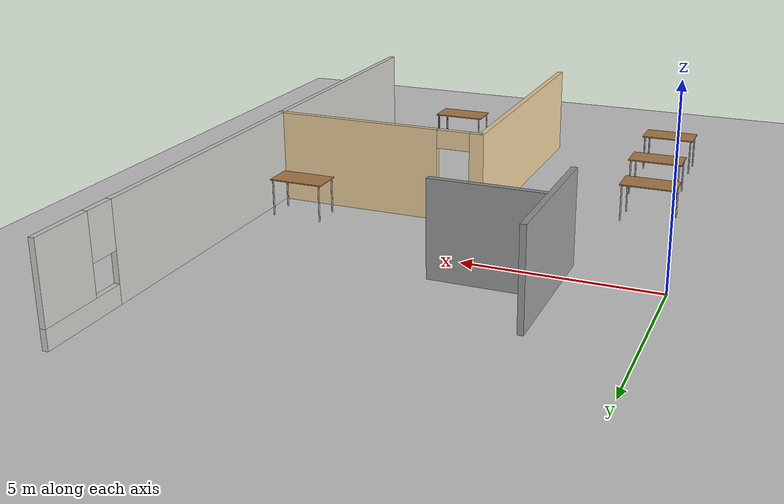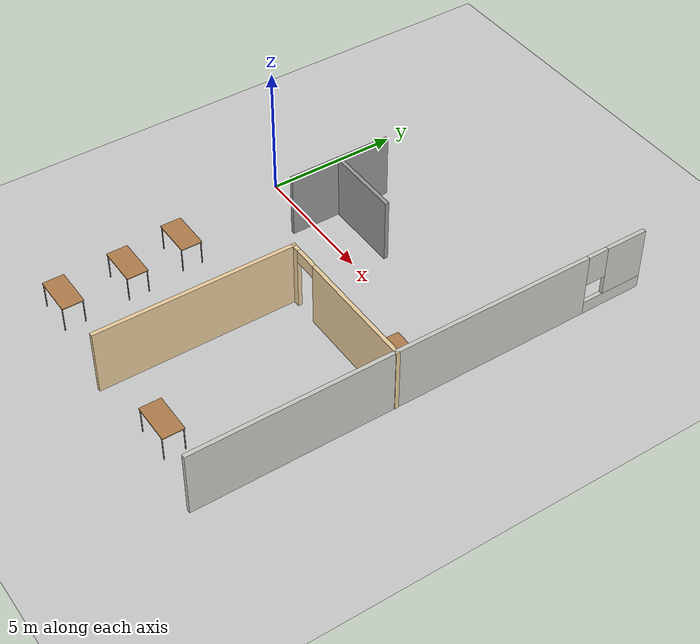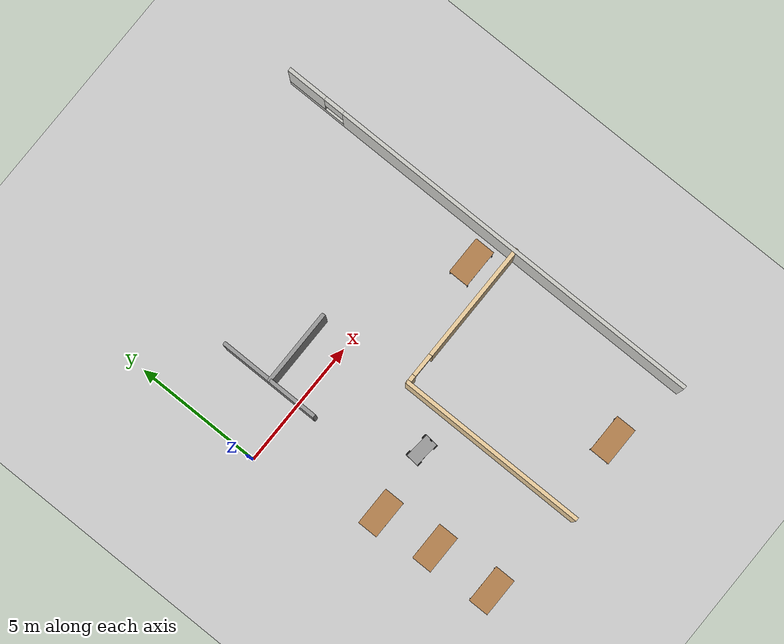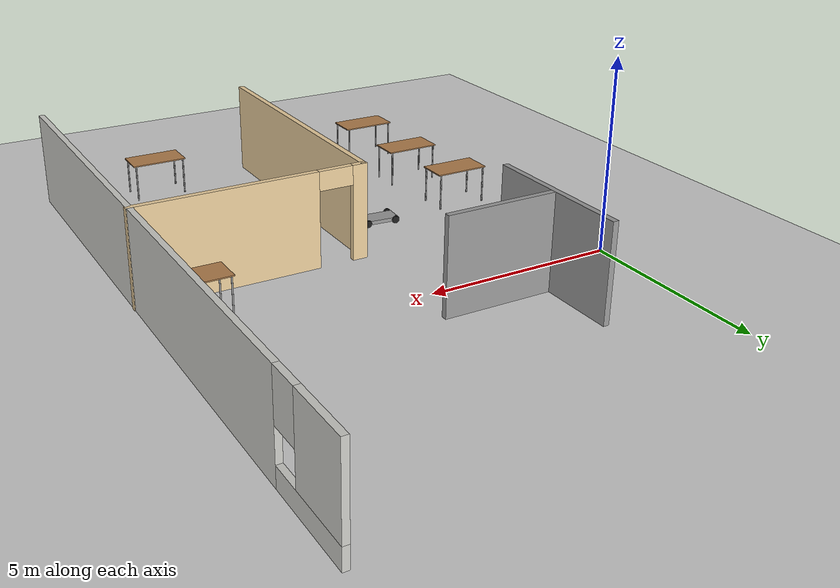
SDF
<sdf version="1.6">
 <world name="default">
  <model name="ground_plane">
   <static>1</static>
   <link name="link">
    <collision name="collision">
     <geometry><plane><normal>0 0 1</normal><size>100 100</size></plane></geometry>
     <surface>
      <contact><collide_bitmask>65535</collide_bitmask></contact>
      <friction><ode><mu>100</mu><mu2>50</mu2></ode></friction>
     </surface>
    </collision>
    <visual name="visual">
     <cast_shadows>0</cast_shadows>
     <geometry><plane><normal>0 0 1</normal><size>100 100</size></plane></geometry>
     <material>
      <script><uri>file://media/materials/scripts/gazebo.material</uri><name>Gazebo/Grey</name></script>
     </material>
    </visual>
   </link>
  </model>
  <model name="table">
   <static>1</static>
   <link name="link">
    <collision name="surface">
     <pose>0 0 1 0 -0 0</pose>
     <geometry><box><size>1.5 0.8 0.03</size></box></geometry>
     <surface><friction><ode><mu>0.6</mu><mu2>0.6</mu2></ode></friction></surface>
    </collision>
    <visual name="visual1">
     <pose>0 0 1 0 -0 0</pose>
     <geometry><box><size>1.5 0.8 0.03</size></box></geometry>
     <material>
      <script><uri>file://media/materials/scripts/gazebo.material</uri><name>Gazebo/Wood</name></script>
     </material>
    </visual>
    <collision name="front_left_leg">
     <pose>0.68 0.38 0.5 0 -0 0</pose>
     <geometry><cylinder><radius>0.02</radius><length>1</length></cylinder></geometry>
    </collision>
    <visual name="front_left_leg">
     <pose>0.68 0.38 0.5 0 -0 0</pose>
     <geometry><cylinder><radius>0.02</radius><length>1</length></cylinder></geometry>
     <material>
      <script><uri>file://media/materials/scripts/gazebo.material</uri><name>Gazebo/Grey</name></script>
     </material>
    </visual>
    <collision name="front_right_leg">
     <pose>0.68 -0.38 0.5 0 -0 0</pose>
     <geometry><cylinder><radius>0.02</radius><length>1</length></cylinder></geometry>
    </collision>
    <visual name="front_right_leg">
     <pose>0.68 -0.38 0.5 0 -0 0</pose>
     <geometry><cylinder><radius>0.02</radius><length>1</length></cylinder></geometry>
     <material>
      <script><uri>file://media/materials/scripts/gazebo.material</uri><name>Gazebo/Grey</name></script>
     </material>
    </visual>
    <collision name="back_right_leg">
     <pose>-0.68 -0.38 0.5 0 -0 0</pose>
     <geometry><cylinder><radius>0.02</radius><length>1</length></cylinder></geometry>
    </collision>
    <visual name="back_right_leg">
     <pose>-0.68 -0.38 0.5 0 -0 0</pose>
     <geometry><cylinder><radius>0.02</radius><length>1</length></cylinder></geometry>
     <material>
      <script><uri>file://media/materials/scripts/gazebo.material</uri><name>Gazebo/Grey</name></script>
     </material>
    </visual>
    <collision name="back_left_leg">
     <pose>-0.68 0.38 0.5 0 -0 0</pose>
     <geometry><cylinder><radius>0.02</radius><length>1</length></cylinder></geometry>
    </collision>
    <visual name="back_left_leg">
     <pose>-0.68 0.38 0.5 0 -0 0</pose>
     <geometry><cylinder><radius>0.02</radius><length>1</length></cylinder></geometry>
     <material>
      <script><uri>file://media/materials/scripts/gazebo.material</uri><name>Gazebo/Grey</name></script>
     </material>
    </visual>
   </link>
   <pose>1.70208 -9.32106 0 0 -0 0</pose>
  </model>
  <model name="table_0">
   <static>1</static>
   <link name="link">
    <collision name="surface">
     <pose>0 0 1 0 -0 0</pose>
     <geometry><box><size>1.5 0.8 0.03</size></box></geometry>
     <surface><friction><ode><mu>0.6</mu><mu2>0.6</mu2></ode></friction></surface>
    </collision>
    <visual name="visual1">
     <pose>0 0 1 0 -0 0</pose>
     <geometry><box><size>1.5 0.8 0.03</size></box></geometry>
     <material>
      <script><uri>file://media/materials/scripts/gazebo.material</uri><name>Gazebo/Wood</name></script>
     </material>
    </visual>
    <collision name="front_left_leg">
     <pose>0.68 0.38 0.5 0 -0 0</pose>
     <geometry><cylinder><radius>0.02</radius><length>1</length></cylinder></geometry>
    </collision>
    <visual name="front_left_leg">
     <pose>0.68 0.38 0.5 0 -0 0</pose>
     <geometry><cylinder><radius>0.02</radius><length>1</length></cylinder></geometry>
     <material>
      <script><uri>file://media/materials/scripts/gazebo.material</uri><name>Gazebo/Grey</name></script>
     </material>
    </visual>
    <collision name="front_right_leg">
     <pose>0.68 -0.38 0.5 0 -0 0</pose>
     <geometry><cylinder><radius>0.02</radius><length>1</length></cylinder></geometry>
    </collision>
    <visual name="front_right_leg">
     <pose>0.68 -0.38 0.5 0 -0 0</pose>
     <geometry><cylinder><radius>0.02</radius><length>1</length></cylinder></geometry>
     <material>
      <script><uri>file://media/materials/scripts/gazebo.material</uri><name>Gazebo/Grey</name></script>
     </material>
    </visual>
    <collision name="back_right_leg">
     <pose>-0.68 -0.38 0.5 0 -0 0</pose>
     <geometry><cylinder><radius>0.02</radius><length>1</length></cylinder></geometry>
    </collision>
    <visual name="back_right_leg">
     <pose>-0.68 -0.38 0.5 0 -0 0</pose>
     <geometry><cylinder><radius>0.02</radius><length>1</length></cylinder></geometry>
     <material>
      <script><uri>file://media/materials/scripts/gazebo.material</uri><name>Gazebo/Grey</name></script>
     </material>
    </visual>
    <collision name="back_left_leg">
     <pose>-0.68 0.38 0.5 0 -0 0</pose>
     <geometry><cylinder><radius>0.02</radius><length>1</length></cylinder></geometry>
    </collision>
    <visual name="back_left_leg">
     <pose>-0.68 0.38 0.5 0 -0 0</pose>
     <geometry><cylinder><radius>0.02</radius><length>1</length></cylinder></geometry>
     <material>
      <script><uri>file://media/materials/scripts/gazebo.material</uri><name>Gazebo/Grey</name></script>
     </material>
    </visual>
   </link>
   <pose>8.39997 -9.31571 0 0 -0 0</pose>
  </model>
  <model name="table_1">
   <static>1</static>
   <link name="link">
    <collision name="surface">
     <pose>0 0 1 0 -0 0</pose>
     <geometry><box><size>1.5 0.8 0.03</size></box></geometry>
     <surface><friction><ode><mu>0.6</mu><mu2>0.6</mu2></ode></friction></surface>
    </collision>
    <visual name="visual1">
     <pose>0 0 1 0 -0 0</pose>
     <geometry><box><size>1.5 0.8 0.03</size></box></geometry>
     <material>
      <script><uri>file://media/materials/scripts/gazebo.material</uri><name>Gazebo/Wood</name></script>
     </material>
    </visual>
    <collision name="front_left_leg">
     <pose>0.68 0.38 0.5 0 -0 0</pose>
     <geometry><cylinder><radius>0.02</radius><length>1</length></cylinder></geometry>
    </collision>
    <visual name="front_left_leg">
     <pose>0.68 0.38 0.5 0 -0 0</pose>
     <geometry><cylinder><radius>0.02</radius><length>1</length></cylinder></geometry>
     <material>
      <script><uri>file://media/materials/scripts/gazebo.material</uri><name>Gazebo/Grey</name></script>
     </material>
    </visual>
    <collision name="front_right_leg">
     <pose>0.68 -0.38 0.5 0 -0 0</pose>
     <geometry><cylinder><radius>0.02</radius><length>1</length></cylinder></geometry>
    </collision>
    <visual name="front_right_leg">
     <pose>0.68 -0.38 0.5 0 -0 0</pose>
     <geometry><cylinder><radius>0.02</radius><length>1</length></cylinder></geometry>
     <material>
      <script><uri>file://media/materials/scripts/gazebo.material</uri><name>Gazebo/Grey</name></script>
     </material>
    </visual>
    <collision name="back_right_leg">
     <pose>-0.68 -0.38 0.5 0 -0 0</pose>
     <geometry><cylinder><radius>0.02</radius><length>1</length></cylinder></geometry>
    </collision>
    <visual name="back_right_leg">
     <pose>-0.68 -0.38 0.5 0 -0 0</pose>
     <geometry><cylinder><radius>0.02</radius><length>1</length></cylinder></geometry>
     <material>
      <script><uri>file://media/materials/scripts/gazebo.material</uri><name>Gazebo/Grey</name></script>
     </material>
    </visual>
    <collision name="back_left_leg">
     <pose>-0.68 0.38 0.5 0 -0 0</pose>
     <geometry><cylinder><radius>0.02</radius><length>1</length></cylinder></geometry>
    </collision>
    <visual name="back_left_leg">
     <pose>-0.68 0.38 0.5 0 -0 0</pose>
     <geometry><cylinder><radius>0.02</radius><length>1</length></cylinder></geometry>
     <material>
      <script><uri>file://media/materials/scripts/gazebo.material</uri><name>Gazebo/Grey</name></script>
     </material>
    </visual>
   </link>
   <pose>1.60772 -6.87616 0 0 -0 0</pose>
  </model>
  <model name="table_2">
   <static>1</static>
   <link name="link">
    <collision name="surface">
     <pose>0 0 1 0 -0 0</pose>
     <geometry><box><size>1.5 0.8 0.03</size></box></geometry>
     <surface><friction><ode><mu>0.6</mu><mu2>0.6</mu2></ode></friction></surface>
    </collision>
    <visual name="visual1">
     <pose>0 0 1 0 -0 0</pose>
     <geometry><box><size>1.5 0.8 0.03</size></box></geometry>
     <material>
      <script><uri>file://media/materials/scripts/gazebo.material</uri><name>Gazebo/Wood</name></script>
     </material>
    </visual>
    <collision name="front_left_leg">
     <pose>0.68 0.38 0.5 0 -0 0</pose>
     <geometry><cylinder><radius>0.02</radius><length>1</length></cylinder></geometry>
    </collision>
    <visual name="front_left_leg">
     <pose>0.68 0.38 0.5 0 -0 0</pose>
     <geometry><cylinder><radius>0.02</radius><length>1</length></cylinder></geometry>
     <material>
      <script><uri>file://media/materials/scripts/gazebo.material</uri><name>Gazebo/Grey</name></script>
     </material>
    </visual>
    <collision name="front_right_leg">
     <pose>0.68 -0.38 0.5 0 -0 0</pose>
     <geometry><cylinder><radius>0.02</radius><length>1</length></cylinder></geometry>
    </collision>
    <visual name="front_right_leg">
     <pose>0.68 -0.38 0.5 0 -0 0</pose>
     <geometry><cylinder><radius>0.02</radius><length>1</length></cylinder></geometry>
     <material>
      <script><uri>file://media/materials/scripts/gazebo.material</uri><name>Gazebo/Grey</name></script>
     </material>
    </visual>
    <collision name="back_right_leg">
     <pose>-0.68 -0.38 0.5 0 -0 0</pose>
     <geometry><cylinder><radius>0.02</radius><length>1</length></cylinder></geometry>
    </collision>
    <visual name="back_right_leg">
     <pose>-0.68 -0.38 0.5 0 -0 0</pose>
     <geometry><cylinder><radius>0.02</radius><length>1</length></cylinder></geometry>
     <material>
      <script><uri>file://media/materials/scripts/gazebo.material</uri><name>Gazebo/Grey</name></script>
     </material>
    </visual>
    <collision name="back_left_leg">
     <pose>-0.68 0.38 0.5 0 -0 0</pose>
     <geometry><cylinder><radius>0.02</radius><length>1</length></cylinder></geometry>
    </collision>
    <visual name="back_left_leg">
     <pose>-0.68 0.38 0.5 0 -0 0</pose>
     <geometry><cylinder><radius>0.02</radius><length>1</length></cylinder></geometry>
     <material>
      <script><uri>file://media/materials/scripts/gazebo.material</uri><name>Gazebo/Grey</name></script>
     </material>
    </visual>
   </link>
   <pose>1.36768 -4.66002 0 0 -0 0</pose>
  </model>
  <model name="table_3">
   <static>1</static>
   <link name="link">
    <collision name="surface">
     <pose>0 0 1 0 -0 0</pose>
     <geometry><box><size>1.5 0.8 0.03</size></box></geometry>
     <surface><friction><ode><mu>0.6</mu><mu2>0.6</mu2></ode></friction></surface>
    </collision>
    <visual name="visual1">
     <pose>0 0 1 0 -0 0</pose>
     <geometry><box><size>1.5 0.8 0.03</size></box></geometry>
     <material>
      <script><uri>file://media/materials/scripts/gazebo.material</uri><name>Gazebo/Wood</name></script>
     </material>
    </visual>
    <collision name="front_left_leg">
     <pose>0.68 0.38 0.5 0 -0 0</pose>
     <geometry><cylinder><radius>0.02</radius><length>1</length></cylinder></geometry>
    </collision>
    <visual name="front_left_leg">
     <pose>0.68 0.38 0.5 0 -0 0</pose>
     <geometry><cylinder><radius>0.02</radius><length>1</length></cylinder></geometry>
     <material>
      <script><uri>file://media/materials/scripts/gazebo.material</uri><name>Gazebo/Grey</name></script>
     </material>
    </visual>
    <collision name="front_right_leg">
     <pose>0.68 -0.38 0.5 0 -0 0</pose>
     <geometry><cylinder><radius>0.02</radius><length>1</length></cylinder></geometry>
    </collision>
    <visual name="front_right_leg">
     <pose>0.68 -0.38 0.5 0 -0 0</pose>
     <geometry><cylinder><radius>0.02</radius><length>1</length></cylinder></geometry>
     <material>
      <script><uri>file://media/materials/scripts/gazebo.material</uri><name>Gazebo/Grey</name></script>
     </material>
    </visual>
    <collision name="back_right_leg">
     <pose>-0.68 -0.38 0.5 0 -0 0</pose>
     <geometry><cylinder><radius>0.02</radius><length>1</length></cylinder></geometry>
    </collision>
    <visual name="back_right_leg">
     <pose>-0.68 -0.38 0.5 0 -0 0</pose>
     <geometry><cylinder><radius>0.02</radius><length>1</length></cylinder></geometry>
     <material>
      <script><uri>file://media/materials/scripts/gazebo.material</uri><name>Gazebo/Grey</name></script>
     </material>
    </visual>
    <collision name="back_left_leg">
     <pose>-0.68 0.38 0.5 0 -0 0</pose>
     <geometry><cylinder><radius>0.02</radius><length>1</length></cylinder></geometry>
    </collision>
    <visual name="back_left_leg">
     <pose>-0.68 0.38 0.5 0 -0 0</pose>
     <geometry><cylinder><radius>0.02</radius><length>1</length></cylinder></geometry>
     <material>
      <script><uri>file://media/materials/scripts/gazebo.material</uri><name>Gazebo/Grey</name></script>
     </material>
    </visual>
   </link>
   <pose>10.1375 -1.60445 0 0 -0 0</pose>
  </model>
  <model name="Building">
   <link name="Wall_18">
    <pose>4.58481 -4.95144 0 0 -0 1.5708</pose>
    <visual name="Wall_18_Visual">
     <pose>0 0 1.25 0 -0 0</pose>
     <geometry><box><size>7.5 0.15 2.5</size></box></geometry>
     <material>
      <script><uri>file://media/materials/scripts/gazebo.material</uri><name>Gazebo/Grey</name></script>
      <ambient>0.921569 0.807843 0.615686 1</ambient>
      <shader type="pixel"/>
      <diffuse>0.7 0.7 0.7 1</diffuse>
      <specular>0.01 0.01 0.01 1</specular>
      <emissive>0 0 0 1</emissive>
     </material>
     <meta><layer>0</layer></meta>
    </visual>
    <collision name="Wall_18_Collision">
     <pose>0 0 1.25 0 -0 0</pose>
     <geometry><box><size>7.5 0.15 2.5</size></box></geometry>
     <surface>
      <friction>
       <ode><mu>1</mu><mu2>1</mu2><fdir1>0 0 0</fdir1><slip1>0</slip1><slip2>0</slip2></ode>
       <torsional>
        <coefficient>1</coefficient>
        <patch_radius>0</patch_radius>
        <surface_radius>0</surface_radius>
        <use_patch_radius>1</use_patch_radius>
        <ode><slip>0</slip></ode>
       </torsional>
      </friction>
      <bounce><restitution_coefficient>0</restitution_coefficient><threshold>1e+06</threshold></bounce>
      <contact>
       <collide_without_contact>0</collide_without_contact>
       <collide_without_contact_bitmask>1</collide_without_contact_bitmask>
       <collide_bitmask>1</collide_bitmask>
       <ode>
        <soft_cfm>0</soft_cfm>
        <soft_erp>0.2</soft_erp>
        <kp>1e+13</kp>
        <kd>1</kd>
        <max_vel>0.01</max_vel>
        <min_depth>0</min_depth>
       </ode>
       <bullet>
        <split_impulse>1</split_impulse>
        <split_impulse_penetration_threshold>-0.01</split_impulse_penetration_threshold>
        <soft_cfm>0</soft_cfm>
        <soft_erp>0.2</soft_erp>
        <kp>1e+13</kp>
        <kd>1</kd>
       </bullet>
      </contact>
     </surface>
    </collision>
   </link>
   <link name="Wall_19">
    <pose>7.50981 -1.27643 0 0 -0 0</pose>
    <visual name="Wall_19_Visual_1">
     <pose>0.646095 0 1.25 0 -0 0</pose>
     <geometry><box><size>4.70781 0.15 2.5</size></box></geometry>
     <material>
      <script><uri>file://media/materials/scripts/gazebo.material</uri><name>Gazebo/Grey</name></script>
      <ambient>0.921569 0.807843 0.615686 1</ambient>
      <shader type="pixel"/>
      <diffuse>0.7 0.7 0.7 1</diffuse>
      <specular>0.01 0.01 0.01 1</specular>
      <emissive>0 0 0 1</emissive>
     </material>
     <meta><layer>0</layer></meta>
    </visual>
    <visual name="Wall_19_Visual_2">
     <pose>-2.15781 0 2.25 0 -0 0</pose>
     <geometry><box><size>0.9 0.15 0.5</size></box></geometry>
     <material>
      <script><uri>file://media/materials/scripts/gazebo.material</uri><name>Gazebo/Grey</name></script>
      <ambient>0.921569 0.807843 0.615686 1</ambient>
      <shader type="pixel"/>
      <diffuse>0.7 0.7 0.7 1</diffuse>
      <specular>0.01 0.01 0.01 1</specular>
      <emissive>0 0 0 1</emissive>
     </material>
     <meta><layer>0</layer></meta>
    </visual>
    <visual name="Wall_19_Visual_0">
     <pose>-2.8039 0 1.25 0 -0 0</pose>
     <geometry><box><size>0.39219 0.15 2.5</size></box></geometry>
     <material>
      <script><uri>file://media/materials/scripts/gazebo.material</uri><name>Gazebo/Grey</name></script>
      <ambient>0.921569 0.807843 0.615686 1</ambient>
      <shader type="pixel"/>
      <diffuse>0.7 0.7 0.7 1</diffuse>
      <specular>0.01 0.01 0.01 1</specular>
      <emissive>0 0 0 1</emissive>
     </material>
     <meta><layer>0</layer></meta>
    </visual>
    <collision name="Wall_19_Collision_1">
     <pose>0.646095 0 1.25 0 -0 0</pose>
     <geometry><box><size>4.70781 0.15 2.5</size></box></geometry>
     <surface>
      <friction>
       <ode><mu>1</mu><mu2>1</mu2><fdir1>0 0 0</fdir1><slip1>0</slip1><slip2>0</slip2></ode>
       <torsional>
        <coefficient>1</coefficient>
        <patch_radius>0</patch_radius>
        <surface_radius>0</surface_radius>
        <use_patch_radius>1</use_patch_radius>
        <ode><slip>0</slip></ode>
       </torsional>
      </friction>
      <bounce><restitution_coefficient>0</restitution_coefficient><threshold>1e+06</threshold></bounce>
      <contact>
       <collide_without_contact>0</collide_without_contact>
       <collide_without_contact_bitmask>1</collide_without_contact_bitmask>
       <collide_bitmask>1</collide_bitmask>
       <ode>
        <soft_cfm>0</soft_cfm>
        <soft_erp>0.2</soft_erp>
        <kp>1e+13</kp>
        <kd>1</kd>
        <max_vel>0.01</max_vel>
        <min_depth>0</min_depth>
       </ode>
       <bullet>
        <split_impulse>1</split_impulse>
        <split_impulse_penetration_threshold>-0.01</split_impulse_penetration_threshold>
        <soft_cfm>0</soft_cfm>
        <soft_erp>0.2</soft_erp>
        <kp>1e+13</kp>
        <kd>1</kd>
       </bullet>
      </contact>
     </surface>
    </collision>
    <collision name="Wall_19_Collision_0">
     <pose>-2.8039 0 1.25 0 -0 0</pose>
     <geometry><box><size>0.39219 0.15 2.5</size></box></geometry>
     <surface>
      <friction>
       <ode><mu>1</mu><mu2>1</mu2><fdir1>0 0 0</fdir1><slip1>0</slip1><slip2>0</slip2></ode>
       <torsional>
        <coefficient>1</coefficient>
        <patch_radius>0</patch_radius>
        <surface_radius>0</surface_radius>
        <use_patch_radius>1</use_patch_radius>
        <ode><slip>0</slip></ode>
       </torsional>
      </friction>
      <bounce><restitution_coefficient>0</restitution_coefficient><threshold>1e+06</threshold></bounce>
      <contact>
       <collide_without_contact>0</collide_without_contact>
       <collide_without_contact_bitmask>1</collide_without_contact_bitmask>
       <collide_bitmask>1</collide_bitmask>
       <ode>
        <soft_cfm>0</soft_cfm>
        <soft_erp>0.2</soft_erp>
        <kp>1e+13</kp>
        <kd>1</kd>
        <max_vel>0.01</max_vel>
        <min_depth>0</min_depth>
       </ode>
       <bullet>
        <split_impulse>1</split_impulse>
        <split_impulse_penetration_threshold>-0.01</split_impulse_penetration_threshold>
        <soft_cfm>0</soft_cfm>
        <soft_erp>0.2</soft_erp>
        <kp>1e+13</kp>
        <kd>1</kd>
       </bullet>
      </contact>
     </surface>
    </collision>
    <collision name="Wall_19_Collision_2">
     <pose>-2.15781 0 2.25 0 -0 0</pose>
     <geometry><box><size>0.9 0.15 0.5</size></box></geometry>
     <surface>
      <friction>
       <ode><mu>1</mu><mu2>1</mu2><fdir1>0 0 0</fdir1><slip1>0</slip1><slip2>0</slip2></ode>
       <torsional>
        <coefficient>1</coefficient>
        <patch_radius>0</patch_radius>
        <surface_radius>0</surface_radius>
        <use_patch_radius>1</use_patch_radius>
        <ode><slip>0</slip></ode>
       </torsional>
      </friction>
      <bounce><restitution_coefficient>0</restitution_coefficient><threshold>1e+06</threshold></bounce>
      <contact>
       <collide_without_contact>0</collide_without_contact>
       <collide_without_contact_bitmask>1</collide_without_contact_bitmask>
       <collide_bitmask>1</collide_bitmask>
       <ode>
        <soft_cfm>0</soft_cfm>
        <soft_erp>0.2</soft_erp>
        <kp>1e+13</kp>
        <kd>1</kd>
        <max_vel>0.01</max_vel>
        <min_depth>0</min_depth>
       </ode>
       <bullet>
        <split_impulse>1</split_impulse>
        <split_impulse_penetration_threshold>-0.01</split_impulse_penetration_threshold>
        <soft_cfm>0</soft_cfm>
        <soft_erp>0.2</soft_erp>
        <kp>1e+13</kp>
        <kd>1</kd>
       </bullet>
      </contact>
     </surface>
    </collision>
   </link>
   <link name="Wall_22">
    <pose>1.66169 2.48404 0 0 -0 1.5708</pose>
    <inertial>
     <mass>1</mass>
     <inertia><ixx>1</ixx><ixy>0</ixy><ixz>0</ixz><iyy>1</iyy><iyz>0</iyz><izz>1</izz></inertia>
    </inertial>
    <visual name="Wall_22_Visual">
     <pose>0 0 1.25 0 -0 0</pose>
     <geometry><box><size>4 0.15 2.5</size></box></geometry>
     <material>
      <script><uri>file://media/materials/scripts/gazebo.material</uri><name>Gazebo/Grey</name></script>
      <ambient>0 0 0 1</ambient>
      <shader type="pixel"><normal_map>__default__</normal_map></shader>
      <diffuse>0.7 0.7 0.7 1</diffuse>
      <specular>0.01 0.01 0.01 1</specular>
      <emissive>0 0 0 1</emissive>
     </material>
     <meta><layer>0</layer></meta>
    </visual>
    <collision name="Wall_22_Collision">
     <pose>0 0 1.25 0 -0 0</pose>
     <geometry><box><size>4 0.15 2.5</size></box></geometry>
     <surface>
      <friction>
       <ode><mu>1</mu><mu2>1</mu2><fdir1>0 0 0</fdir1><slip1>0</slip1><slip2>0</slip2></ode>
       <torsional>
        <coefficient>1</coefficient>
        <patch_radius>0</patch_radius>
        <surface_radius>0</surface_radius>
        <use_patch_radius>1</use_patch_radius>
        <ode><slip>0</slip></ode>
       </torsional>
      </friction>
      <bounce><restitution_coefficient>0</restitution_coefficient><threshold>1e+06</threshold></bounce>
      <contact>
       <collide_without_contact>0</collide_without_contact>
       <collide_without_contact_bitmask>1</collide_without_contact_bitmask>
       <collide_bitmask>1</collide_bitmask>
       <ode>
        <soft_cfm>0</soft_cfm>
        <soft_erp>0.2</soft_erp>
        <kp>1e+13</kp>
        <kd>1</kd>
        <max_vel>0.01</max_vel>
        <min_depth>0</min_depth>
       </ode>
       <bullet>
        <split_impulse>1</split_impulse>
        <split_impulse_penetration_threshold>-0.01</split_impulse_penetration_threshold>
        <soft_cfm>0</soft_cfm>
        <soft_erp>0.2</soft_erp>
        <kp>1e+13</kp>
        <kd>1</kd>
       </bullet>
      </contact>
     </surface>
    </collision>
   </link>
   <link name="Wall_29">
    <pose>3.09 2.4505 0 0 -0 0</pose>
    <inertial>
     <mass>1</mass>
     <inertia><ixx>1</ixx><ixy>0</ixy><ixz>0</ixz><iyy>1</iyy><iyz>0</iyz><izz>1</izz></inertia>
    </inertial>
    <visual name="Wall_29_Visual">
     <pose>0 0 1.25 0 -0 0</pose>
     <geometry><box><size>3 0.15 2.5</size></box></geometry>
     <material>
      <script><uri>file://media/materials/scripts/gazebo.material</uri><name>Gazebo/Grey</name></script>
      <ambient>0 0 0 1</ambient>
      <shader type="pixel"><normal_map>__default__</normal_map></shader>
      <diffuse>0.7 0.7 0.7 1</diffuse>
      <specular>0.01 0.01 0.01 1</specular>
      <emissive>0 0 0 1</emissive>
     </material>
     <meta><layer>0</layer></meta>
    </visual>
    <collision name="Wall_29_Collision">
     <pose>0 0 1.25 0 -0 0</pose>
     <geometry><box><size>3 0.15 2.5</size></box></geometry>
     <surface>
      <friction>
       <ode><mu>1</mu><mu2>1</mu2><fdir1>0 0 0</fdir1><slip1>0</slip1><slip2>0</slip2></ode>
       <torsional>
        <coefficient>1</coefficient>
        <patch_radius>0</patch_radius>
        <surface_radius>0</surface_radius>
        <use_patch_radius>1</use_patch_radius>
        <ode><slip>0</slip></ode>
       </torsional>
      </friction>
      <bounce><restitution_coefficient>0</restitution_coefficient><threshold>1e+06</threshold></bounce>
      <contact>
       <collide_without_contact>0</collide_without_contact>
       <collide_without_contact_bitmask>1</collide_without_contact_bitmask>
       <collide_bitmask>1</collide_bitmask>
       <ode>
        <soft_cfm>0</soft_cfm>
        <soft_erp>0.2</soft_erp>
        <kp>1e+13</kp>
        <kd>1</kd>
        <max_vel>0.01</max_vel>
        <min_depth>0</min_depth>
       </ode>
       <bullet>
        <split_impulse>1</split_impulse>
        <split_impulse_penetration_threshold>-0.01</split_impulse_penetration_threshold>
        <soft_cfm>0</soft_cfm>
        <soft_erp>0.2</soft_erp>
        <kp>1e+13</kp>
        <kd>1</kd>
       </bullet>
      </contact>
     </surface>
    </collision>
   </link>
   <link name="Wall_3">
    <pose>10.4152 0 0 0 -0 1.5708</pose>
    <inertial>
     <mass>1</mass>
     <inertia><ixx>1</ixx><ixy>0</ixy><ixz>0</ixz><iyy>1</iyy><iyz>0</iyz><izz>1</izz></inertia>
    </inertial>
    <visual name="Wall_3_Visual_1">
     <pose>7.54165 0 0.25 0 -0 0</pose>
     <geometry><box><size>2.41671 0.15 0.5</size></box></geometry>
     <material>
      <script><uri>file://media/materials/scripts/gazebo.material</uri><name>Gazebo/CeilingTiled</name></script>
      <ambient>0.5 0.5 0.5 1</ambient>
      <shader type="pixel"><normal_map>__default__</normal_map></shader>
      <diffuse>1 1 1 1</diffuse>
      <specular>0 0 0 1</specular>
      <emissive>0 0 0 1</emissive>
     </material>
     <meta><layer>0</layer></meta>
    </visual>
    <visual name="Wall_3_Visual_2">
     <pose>7.94165 0 1.5 0 -0 0</pose>
     <geometry><box><size>1.61671 0.15 2</size></box></geometry>
     <material>
      <script><uri>file://media/materials/scripts/gazebo.material</uri><name>Gazebo/CeilingTiled</name></script>
      <ambient>0.5 0.5 0.5 1</ambient>
      <shader type="pixel"><normal_map>__default__</normal_map></shader>
      <diffuse>1 1 1 1</diffuse>
      <specular>0 0 0 1</specular>
      <emissive>0 0 0 1</emissive>
     </material>
     <meta><layer>0</layer></meta>
    </visual>
    <visual name="Wall_3_Visual_3">
     <pose>6.73329 0 1.9 0 -0 0</pose>
     <geometry><box><size>0.8 0.15 1.2</size></box></geometry>
     <material>
      <script><uri>file://media/materials/scripts/gazebo.material</uri><name>Gazebo/CeilingTiled</name></script>
      <ambient>0.5 0.5 0.5 1</ambient>
      <shader type="pixel"><normal_map>__default__</normal_map></shader>
      <diffuse>1 1 1 1</diffuse>
      <specular>0 0 0 1</specular>
      <emissive>0 0 0 1</emissive>
     </material>
     <meta><layer>0</layer></meta>
    </visual>
    <visual name="Wall_3_Visual_0">
     <pose>-1.20835 0 1.25 0 -0 0</pose>
     <geometry><box><size>15.0833 0.15 2.5</size></box></geometry>
     <material>
      <script><uri>file://media/materials/scripts/gazebo.material</uri><name>Gazebo/CeilingTiled</name></script>
      <ambient>0.5 0.5 0.5 1</ambient>
      <shader type="pixel"><normal_map>__default__</normal_map></shader>
      <diffuse>1 1 1 1</diffuse>
      <specular>0 0 0 1</specular>
      <emissive>0 0 0 1</emissive>
     </material>
     <meta><layer>0</layer></meta>
    </visual>
    <collision name="Wall_3_Collision_0">
     <pose>-1.20835 0 1.25 0 -0 0</pose>
     <geometry><box><size>15.0833 0.15 2.5</size></box></geometry>
     <surface>
      <friction>
       <ode><mu>1</mu><mu2>1</mu2><fdir1>0 0 0</fdir1><slip1>0</slip1><slip2>0</slip2></ode>
       <torsional>
        <coefficient>1</coefficient>
        <patch_radius>0</patch_radius>
        <surface_radius>0</surface_radius>
        <use_patch_radius>1</use_patch_radius>
        <ode><slip>0</slip></ode>
       </torsional>
      </friction>
      <bounce><restitution_coefficient>0</restitution_coefficient><threshold>1e+06</threshold></bounce>
      <contact>
       <collide_without_contact>0</collide_without_contact>
       <collide_without_contact_bitmask>1</collide_without_contact_bitmask>
       <collide_bitmask>1</collide_bitmask>
       <ode>
        <soft_cfm>0</soft_cfm>
        <soft_erp>0.2</soft_erp>
        <kp>1e+13</kp>
        <kd>1</kd>
        <max_vel>0.01</max_vel>
        <min_depth>0</min_depth>
       </ode>
       <bullet>
        <split_impulse>1</split_impulse>
        <split_impulse_penetration_threshold>-0.01</split_impulse_penetration_threshold>
        <soft_cfm>0</soft_cfm>
        <soft_erp>0.2</soft_erp>
        <kp>1e+13</kp>
        <kd>1</kd>
       </bullet>
      </contact>
     </surface>
    </collision>
    <collision name="Wall_3_Collision_2">
     <pose>7.94165 0 1.5 0 -0 0</pose>
     <geometry><box><size>1.61671 0.15 2</size></box></geometry>
     <surface>
      <friction>
       <ode><mu>1</mu><mu2>1</mu2><fdir1>0 0 0</fdir1><slip1>0</slip1><slip2>0</slip2></ode>
       <torsional>
        <coefficient>1</coefficient>
        <patch_radius>0</patch_radius>
        <surface_radius>0</surface_radius>
        <use_patch_radius>1</use_patch_radius>
        <ode><slip>0</slip></ode>
       </torsional>
      </friction>
      <bounce><restitution_coefficient>0</restitution_coefficient><threshold>1e+06</threshold></bounce>
      <contact>
       <collide_without_contact>0</collide_without_contact>
       <collide_without_contact_bitmask>1</collide_without_contact_bitmask>
       <collide_bitmask>1</collide_bitmask>
       <ode>
        <soft_cfm>0</soft_cfm>
        <soft_erp>0.2</soft_erp>
        <kp>1e+13</kp>
        <kd>1</kd>
        <max_vel>0.01</max_vel>
        <min_depth>0</min_depth>
       </ode>
       <bullet>
        <split_impulse>1</split_impulse>
        <split_impulse_penetration_threshold>-0.01</split_impulse_penetration_threshold>
        <soft_cfm>0</soft_cfm>
        <soft_erp>0.2</soft_erp>
        <kp>1e+13</kp>
        <kd>1</kd>
       </bullet>
      </contact>
     </surface>
    </collision>
    <collision name="Wall_3_Collision_1">
     <pose>7.54165 0 0.25 0 -0 0</pose>
     <geometry><box><size>2.41671 0.15 0.5</size></box></geometry>
     <surface>
      <friction>
       <ode><mu>1</mu><mu2>1</mu2><fdir1>0 0 0</fdir1><slip1>0</slip1><slip2>0</slip2></ode>
       <torsional>
        <coefficient>1</coefficient>
        <patch_radius>0</patch_radius>
        <surface_radius>0</surface_radius>
        <use_patch_radius>1</use_patch_radius>
        <ode><slip>0</slip></ode>
       </torsional>
      </friction>
      <bounce><restitution_coefficient>0</restitution_coefficient><threshold>1e+06</threshold></bounce>
      <contact>
       <collide_without_contact>0</collide_without_contact>
       <collide_without_contact_bitmask>1</collide_without_contact_bitmask>
       <collide_bitmask>1</collide_bitmask>
       <ode>
        <soft_cfm>0</soft_cfm>
        <soft_erp>0.2</soft_erp>
        <kp>1e+13</kp>
        <kd>1</kd>
        <max_vel>0.01</max_vel>
        <min_depth>0</min_depth>
       </ode>
       <bullet>
        <split_impulse>1</split_impulse>
        <split_impulse_penetration_threshold>-0.01</split_impulse_penetration_threshold>
        <soft_cfm>0</soft_cfm>
        <soft_erp>0.2</soft_erp>
        <kp>1e+13</kp>
        <kd>1</kd>
       </bullet>
      </contact>
     </surface>
    </collision>
    <collision name="Wall_3_Collision_3">
     <pose>6.73329 0 1.9 0 -0 0</pose>
     <geometry><box><size>0.8 0.15 1.2</size></box></geometry>
     <surface>
      <friction>
       <ode><mu>1</mu><mu2>1</mu2><fdir1>0 0 0</fdir1><slip1>0</slip1><slip2>0</slip2></ode>
       <torsional>
        <coefficient>1</coefficient>
        <patch_radius>0</patch_radius>
        <surface_radius>0</surface_radius>
        <use_patch_radius>1</use_patch_radius>
        <ode><slip>0</slip></ode>
       </torsional>
      </friction>
      <bounce><restitution_coefficient>0</restitution_coefficient><threshold>1e+06</threshold></bounce>
      <contact>
       <collide_without_contact>0</collide_without_contact>
       <collide_without_contact_bitmask>1</collide_without_contact_bitmask>
       <collide_bitmask>1</collide_bitmask>
       <ode>
        <soft_cfm>0</soft_cfm>
        <soft_erp>0.2</soft_erp>
        <kp>1e+13</kp>
        <kd>1</kd>
        <max_vel>0.01</max_vel>
        <min_depth>0</min_depth>
       </ode>
       <bullet>
        <split_impulse>1</split_impulse>
        <split_impulse_penetration_threshold>-0.01</split_impulse_penetration_threshold>
        <soft_cfm>0</soft_cfm>
        <soft_erp>0.2</soft_erp>
        <kp>1e+13</kp>
        <kd>1</kd>
       </bullet>
      </contact>
     </surface>
    </collision>
   </link>
   <static>1</static>
   <pose>0.81107 -1.31925 0 0 -0 0</pose>
  </model>
  <model name="Robot">
   <link name="link_0">
    <pose>-0.395787 -0.010871 -0.185833 0 -0 0</pose>
    <inertial>
     <mass>1</mass>
     <inertia>
      <ixx>0.166667</ixx>
      <ixy>0</ixy>
      <ixz>0</ixz>
      <iyy>0.166667</iyy>
      <iyz>0</iyz>
      <izz>0.166667</izz>
     </inertia>
    </inertial>
    <visual name="visual">
     <geometry><box><size>1 0.5 0.1</size></box></geometry>
     <material>
      <lighting>1</lighting>
      <script><uri>file://media/materials/scripts/gazebo.material</uri><name>Gazebo/Grey</name></script>
      <shader type="pixel"><normal_map>__default__</normal_map></shader>
      <ambient>0.5 0.5 0.5 1</ambient>
      <diffuse>0.5 0.5 0.5 1</diffuse>
      <specular>0.11 0.11 0.11 1</specular>
      <emissive>0 0 0 1</emissive>
     </material>
    </visual>
    <collision name="collision">
     <geometry><box><size>1 0.5 0.1</size></box></geometry>
     <surface>
      <friction>
       <ode><mu>1</mu><mu2>1</mu2><fdir1>0 0 0</fdir1><slip1>0</slip1><slip2>0</slip2></ode>
       <torsional>
        <coefficient>1</coefficient>
        <patch_radius>0</patch_radius>
        <surface_radius>0</surface_radius>
        <use_patch_radius>1</use_patch_radius>
        <ode><slip>0</slip></ode>
       </torsional>
      </friction>
      <bounce><restitution_coefficient>0</restitution_coefficient><threshold>1e+06</threshold></bounce>
      <contact>
       <collide_without_contact>0</collide_without_contact>
       <collide_without_contact_bitmask>1</collide_without_contact_bitmask>
       <collide_bitmask>1</collide_bitmask>
       <ode>
        <soft_cfm>0</soft_cfm>
        <soft_erp>0.2</soft_erp>
        <kp>1e+13</kp>
        <kd>1</kd>
        <max_vel>0.01</max_vel>
        <min_depth>0</min_depth>
       </ode>
       <bullet>
        <split_impulse>1</split_impulse>
        <split_impulse_penetration_threshold>-0.01</split_impulse_penetration_threshold>
        <soft_cfm>0</soft_cfm>
        <soft_erp>0.2</soft_erp>
        <kp>1e+13</kp>
        <kd>1</kd>
       </bullet>
      </contact>
     </surface>
    </collision>
   </link>
   <link name="link_1">
    <pose>-0.795787 -0.285871 -0.185833 1.5708 -0 0</pose>
    <inertial>
     <mass>1</mass>
     <inertia><ixx>0.145833</ixx><ixy>0</ixy><ixz>0</ixz><iyy>0.145833</iyy><iyz>0</iyz><izz>0.125</izz></inertia>
    </inertial>
    <visual name="visual">
     <geometry><cylinder><radius>0.1</radius><length>0.05</length></cylinder></geometry>
     <material>
      <lighting>1</lighting>
      <script><uri>file://media/materials/scripts/gazebo.material</uri><name>Gazebo/Black</name></script>
      <shader type="pixel"><normal_map>__default__</normal_map></shader>
      <ambient>1 0.1 0.1 1</ambient>
      <diffuse>0.5 0.5 0.5 1</diffuse>
      <specular>0.01 0.01 0.01 1</specular>
      <emissive>0 0 0 1</emissive>
     </material>
    </visual>
    <collision name="collision">
     <geometry><cylinder><radius>0.1</radius><length>0.05</length></cylinder></geometry>
     <surface>
      <friction>
       <ode><mu>1</mu><mu2>1</mu2><fdir1>0 0 0</fdir1><slip1>0</slip1><slip2>0</slip2></ode>
       <torsional>
        <coefficient>1</coefficient>
        <patch_radius>0</patch_radius>
        <surface_radius>0</surface_radius>
        <use_patch_radius>1</use_patch_radius>
        <ode><slip>0</slip></ode>
       </torsional>
      </friction>
      <bounce><restitution_coefficient>0</restitution_coefficient><threshold>1e+06</threshold></bounce>
      <contact>
       <collide_without_contact>0</collide_without_contact>
       <collide_without_contact_bitmask>1</collide_without_contact_bitmask>
       <collide_bitmask>1</collide_bitmask>
       <ode>
        <soft_cfm>0</soft_cfm>
        <soft_erp>0.2</soft_erp>
        <kp>1e+13</kp>
        <kd>1</kd>
        <max_vel>0.01</max_vel>
        <min_depth>0</min_depth>
       </ode>
       <bullet>
        <split_impulse>1</split_impulse>
        <split_impulse_penetration_threshold>-0.01</split_impulse_penetration_threshold>
        <soft_cfm>0</soft_cfm>
        <soft_erp>0.2</soft_erp>
        <kp>1e+13</kp>
        <kd>1</kd>
       </bullet>
      </contact>
     </surface>
    </collision>
   </link>
   <link name="link_1_clone">
    <pose>0.004213 0.264129 -0.185833 1.5708 -0 0</pose>
    <inertial>
     <mass>1</mass>
     <inertia><ixx>0.145833</ixx><ixy>0</ixy><ixz>0</ixz><iyy>0.145833</iyy><iyz>0</iyz><izz>0.125</izz></inertia>
    </inertial>
    <visual name="visual">
     <geometry><cylinder><radius>0.1</radius><length>0.05</length></cylinder></geometry>
     <material>
      <lighting>1</lighting>
      <script><uri>file://media/materials/scripts/gazebo.material</uri><name>Gazebo/Black</name></script>
      <shader type="pixel"><normal_map>__default__</normal_map></shader>
      <ambient>1 0.1 0.1 1</ambient>
      <diffuse>0.5 0.5 0.5 1</diffuse>
      <specular>0.01 0.01 0.01 1</specular>
      <emissive>0 0 0 1</emissive>
     </material>
    </visual>
    <collision name="collision">
     <geometry><cylinder><radius>0.1</radius><length>0.05</length></cylinder></geometry>
     <surface>
      <friction>
       <ode><mu>1</mu><mu2>1</mu2><fdir1>0 0 0</fdir1><slip1>0</slip1><slip2>0</slip2></ode>
       <torsional>
        <coefficient>1</coefficient>
        <patch_radius>0</patch_radius>
        <surface_radius>0</surface_radius>
        <use_patch_radius>1</use_patch_radius>
        <ode><slip>0</slip></ode>
       </torsional>
      </friction>
      <bounce><restitution_coefficient>0</restitution_coefficient><threshold>1e+06</threshold></bounce>
      <contact>
       <collide_without_contact>0</collide_without_contact>
       <collide_without_contact_bitmask>1</collide_without_contact_bitmask>
       <collide_bitmask>1</collide_bitmask>
       <ode>
        <soft_cfm>0</soft_cfm>
        <soft_erp>0.2</soft_erp>
        <kp>1e+13</kp>
        <kd>1</kd>
        <max_vel>0.01</max_vel>
        <min_depth>0</min_depth>
       </ode>
       <bullet>
        <split_impulse>1</split_impulse>
        <split_impulse_penetration_threshold>-0.01</split_impulse_penetration_threshold>
        <soft_cfm>0</soft_cfm>
        <soft_erp>0.2</soft_erp>
        <kp>1e+13</kp>
        <kd>1</kd>
       </bullet>
      </contact>
     </surface>
    </collision>
   </link>
   <link name="link_1_clone_0">
    <pose>0.004213 -0.285871 -0.185833 1.5708 -0 0</pose>
    <inertial>
     <mass>1</mass>
     <inertia><ixx>0.145833</ixx><ixy>0</ixy><ixz>0</ixz><iyy>0.145833</iyy><iyz>0</iyz><izz>0.125</izz></inertia>
    </inertial>
    <visual name="visual">
     <geometry><cylinder><radius>0.1</radius><length>0.05</length></cylinder></geometry>
     <material>
      <lighting>1</lighting>
      <script><uri>file://media/materials/scripts/gazebo.material</uri><name>Gazebo/Black</name></script>
      <shader type="pixel"><normal_map>__default__</normal_map></shader>
      <ambient>1 0.1 0.1 1</ambient>
      <diffuse>0.5 0.5 0.5 1</diffuse>
      <specular>0.01 0.01 0.01 1</specular>
      <emissive>0 0 0 1</emissive>
     </material>
    </visual>
    <collision name="collision">
     <geometry><cylinder><radius>0.1</radius><length>0.05</length></cylinder></geometry>
     <surface>
      <friction>
       <ode><mu>1</mu><mu2>1</mu2><fdir1>0 0 0</fdir1><slip1>0</slip1><slip2>0</slip2></ode>
       <torsional>
        <coefficient>1</coefficient>
        <patch_radius>0</patch_radius>
        <surface_radius>0</surface_radius>
        <use_patch_radius>1</use_patch_radius>
        <ode><slip>0</slip></ode>
       </torsional>
      </friction>
      <bounce><restitution_coefficient>0</restitution_coefficient><threshold>1e+06</threshold></bounce>
      <contact>
       <collide_without_contact>0</collide_without_contact>
       <collide_without_contact_bitmask>1</collide_without_contact_bitmask>
       <collide_bitmask>1</collide_bitmask>
       <ode>
        <soft_cfm>0</soft_cfm>
        <soft_erp>0.2</soft_erp>
        <kp>1e+13</kp>
        <kd>1</kd>
        <max_vel>0.01</max_vel>
        <min_depth>0</min_depth>
       </ode>
       <bullet>
        <split_impulse>1</split_impulse>
        <split_impulse_penetration_threshold>-0.01</split_impulse_penetration_threshold>
        <soft_cfm>0</soft_cfm>
        <soft_erp>0.2</soft_erp>
        <kp>1e+13</kp>
        <kd>1</kd>
       </bullet>
      </contact>
     </surface>
    </collision>
   </link>
   <link name="link_1_clone_1">
    <pose>-0.795787 0.264129 -0.185833 1.5708 -0 0</pose>
    <inertial>
     <mass>1</mass>
     <inertia><ixx>0.145833</ixx><ixy>0</ixy><ixz>0</ixz><iyy>0.145833</iyy><iyz>0</iyz><izz>0.125</izz></inertia>
    </inertial>
    <visual name="visual">
     <geometry><cylinder><radius>0.1</radius><length>0.05</length></cylinder></geometry>
     <material>
      <lighting>1</lighting>
      <script><uri>file://media/materials/scripts/gazebo.material</uri><name>Gazebo/Black</name></script>
      <shader type="pixel"><normal_map>__default__</normal_map></shader>
      <ambient>1 0.1 0.1 1</ambient>
      <diffuse>0.5 0.5 0.5 1</diffuse>
      <specular>0.01 0.01 0.01 1</specular>
      <emissive>0 0 0 1</emissive>
     </material>
    </visual>
    <collision name="collision">
     <geometry><cylinder><radius>0.1</radius><length>0.05</length></cylinder></geometry>
     <surface>
      <friction>
       <ode><mu>1</mu><mu2>1</mu2><fdir1>0 0 0</fdir1><slip1>0</slip1><slip2>0</slip2></ode>
       <torsional>
        <coefficient>1</coefficient>
        <patch_radius>0</patch_radius>
        <surface_radius>0</surface_radius>
        <use_patch_radius>1</use_patch_radius>
        <ode><slip>0</slip></ode>
       </torsional>
      </friction>
      <bounce><restitution_coefficient>0</restitution_coefficient><threshold>1e+06</threshold></bounce>
      <contact>
       <collide_without_contact>0</collide_without_contact>
       <collide_without_contact_bitmask>1</collide_without_contact_bitmask>
       <collide_bitmask>1</collide_bitmask>
       <ode>
        <soft_cfm>0</soft_cfm>
        <soft_erp>0.2</soft_erp>
        <kp>1e+13</kp>
        <kd>1</kd>
        <max_vel>0.01</max_vel>
        <min_depth>0</min_depth>
       </ode>
       <bullet>
        <split_impulse>1</split_impulse>
        <split_impulse_penetration_threshold>-0.01</split_impulse_penetration_threshold>
        <soft_cfm>0</soft_cfm>
        <soft_erp>0.2</soft_erp>
        <kp>1e+13</kp>
        <kd>1</kd>
       </bullet>
      </contact>
     </surface>
    </collision>
   </link>
   <link name="link_2">
    <pose>0.079213 -0.010871 -0.110833 0 -0 0</pose>
    <inertial>
     <mass>1</mass>
     <inertia>
      <ixx>0.166667</ixx>
      <ixy>0</ixy>
      <ixz>0</ixz>
      <iyy>0.166667</iyy>
      <iyz>0</iyz>
      <izz>0.166667</izz>
     </inertia>
    </inertial>
    <visual name="visual">
     <geometry><box><size>0.05 0.1 0.05</size></box></geometry>
     <material>
      <lighting>1</lighting>
      <script><uri>file://media/materials/scripts/gazebo.material</uri><name>Gazebo/Black</name></script>
      <shader type="pixel"><normal_map>__default__</normal_map></shader>
      <ambient>0 1 1 1</ambient>
      <diffuse>0 0 0 1</diffuse>
      <specular>0 0 0 1</specular>
      <emissive>0 0 0 1</emissive>
     </material>
    </visual>
    <collision name="collision">
     <geometry><box><size>0.05 0.1 0.05</size></box></geometry>
     <surface>
      <friction>
       <ode><mu>1</mu><mu2>1</mu2><fdir1>0 0 0</fdir1><slip1>0</slip1><slip2>0</slip2></ode>
       <torsional>
        <coefficient>1</coefficient>
        <patch_radius>0</patch_radius>
        <surface_radius>0</surface_radius>
        <use_patch_radius>1</use_patch_radius>
        <ode><slip>0</slip></ode>
       </torsional>
      </friction>
      <bounce><restitution_coefficient>0</restitution_coefficient><threshold>1e+06</threshold></bounce>
      <contact>
       <collide_without_contact>0</collide_without_contact>
       <collide_without_contact_bitmask>1</collide_without_contact_bitmask>
       <collide_bitmask>1</collide_bitmask>
       <ode>
        <soft_cfm>0</soft_cfm>
        <soft_erp>0.2</soft_erp>
        <kp>1e+13</kp>
        <kd>1</kd>
        <max_vel>0.01</max_vel>
        <min_depth>0</min_depth>
       </ode>
       <bullet>
        <split_impulse>1</split_impulse>
        <split_impulse_penetration_threshold>-0.01</split_impulse_penetration_threshold>
        <soft_cfm>0</soft_cfm>
        <soft_erp>0.2</soft_erp>
        <kp>1e+13</kp>
        <kd>1</kd>
       </bullet>
      </contact>
     </surface>
    </collision>
   </link>
   <joint name="link_0_JOINT_2" type="revolute">
    <parent>link_0</parent>
    <child>link_1</child>
    <axis>
     <xyz>0 0 1</xyz>
     <use_parent_model_frame>0</use_parent_model_frame>
     <limit>
      <lower>-1.79769e+308</lower>
      <upper>1.79769e+308</upper>
      <effort>-1</effort>
      <velocity>-1</velocity>
     </limit>
     <dynamics>
      <spring_reference>0</spring_reference>
      <spring_stiffness>0</spring_stiffness>
      <damping>0</damping>
      <friction>0</friction>
     </dynamics>
    </axis>
    <physics>
     <ode><limit><cfm>0</cfm><erp>0.2</erp></limit><suspension><cfm>0</cfm><erp>0.2</erp></suspension></ode>
    </physics>
   </joint>
   <joint name="link_0_JOINT_3" type="revolute">
    <parent>link_0</parent>
    <child>link_1_clone_1</child>
    <axis>
     <xyz>1 0 0</xyz>
     <use_parent_model_frame>0</use_parent_model_frame>
     <limit>
      <lower>-1.79769e+308</lower>
      <upper>1.79769e+308</upper>
      <effort>-1</effort>
      <velocity>-1</velocity>
     </limit>
     <dynamics>
      <spring_reference>0</spring_reference>
      <spring_stiffness>0</spring_stiffness>
      <damping>0</damping>
      <friction>0</friction>
     </dynamics>
    </axis>
    <physics>
     <ode><limit><cfm>0</cfm><erp>0.2</erp></limit><suspension><cfm>0</cfm><erp>0.2</erp></suspension></ode>
    </physics>
   </joint>
   <joint name="link_0_JOINT_4" type="revolute2">
    <parent>link_0</parent>
    <child>link_1_clone_0</child>
    <axis>
     <xyz>0 0 1</xyz>
     <use_parent_model_frame>0</use_parent_model_frame>
     <limit>
      <lower>-1.79769e+308</lower>
      <upper>1.79769e+308</upper>
      <effort>-1</effort>
      <velocity>-1</velocity>
     </limit>
     <dynamics>
      <spring_reference>0</spring_reference>
      <spring_stiffness>0</spring_stiffness>
      <damping>0</damping>
      <friction>0</friction>
     </dynamics>
    </axis>
    <axis2>
     <xyz>0 1 0</xyz>
     <use_parent_model_frame>0</use_parent_model_frame>
     <dynamics>
      <spring_reference>0</spring_reference>
      <spring_stiffness>0</spring_stiffness>
      <damping>0</damping>
      <friction>0</friction>
     </dynamics>
     <limit>
      <lower>-1.79769e+308</lower>
      <upper>1.79769e+308</upper>
      <effort>-1</effort>
      <velocity>-1</velocity>
     </limit>
    </axis2>
    <physics>
     <ode><limit><cfm>0</cfm><erp>0.2</erp></limit><suspension><cfm>0</cfm><erp>0.2</erp></suspension></ode>
    </physics>
   </joint>
   <joint name="link_0_JOINT_5" type="revolute2">
    <parent>link_0</parent>
    <child>link_1_clone</child>
    <axis>
     <xyz>0 0 1</xyz>
     <use_parent_model_frame>0</use_parent_model_frame>
     <limit>
      <lower>-1.79769e+308</lower>
      <upper>1.79769e+308</upper>
      <effort>-1</effort>
      <velocity>-1</velocity>
     </limit>
     <dynamics>
      <spring_reference>0</spring_reference>
      <spring_stiffness>0</spring_stiffness>
      <damping>0</damping>
      <friction>0</friction>
     </dynamics>
    </axis>
    <axis2>
     <xyz>0 1 0</xyz>
     <use_parent_model_frame>0</use_parent_model_frame>
     <dynamics>
      <spring_reference>0</spring_reference>
      <spring_stiffness>0</spring_stiffness>
      <damping>0</damping>
      <friction>0</friction>
     </dynamics>
     <limit>
      <lower>-1.79769e+308</lower>
      <upper>1.79769e+308</upper>
      <effort>-1</effort>
      <velocity>-1</velocity>
     </limit>
    </axis2>
    <physics>
     <ode><limit><cfm>0</cfm><erp>0.2</erp></limit><suspension><cfm>0</cfm><erp>0.2</erp></suspension></ode>
    </physics>
   </joint>
   <joint name="link_0_JOINT_6" type="fixed">
    <parent>link_0</parent>
    <child>link_2</child>
    <physics>
     <ode><limit><cfm>0</cfm><erp>0.2</erp></limit><suspension><cfm>0</cfm><erp>0.2</erp></suspension></ode>
    </physics>
   </joint>
   <static>0</static>
   <pose>4.37278 -4.39451 0.285833 2e-06 1e-06 -0.084855</pose>
  </model>
 </world>
</sdf>
